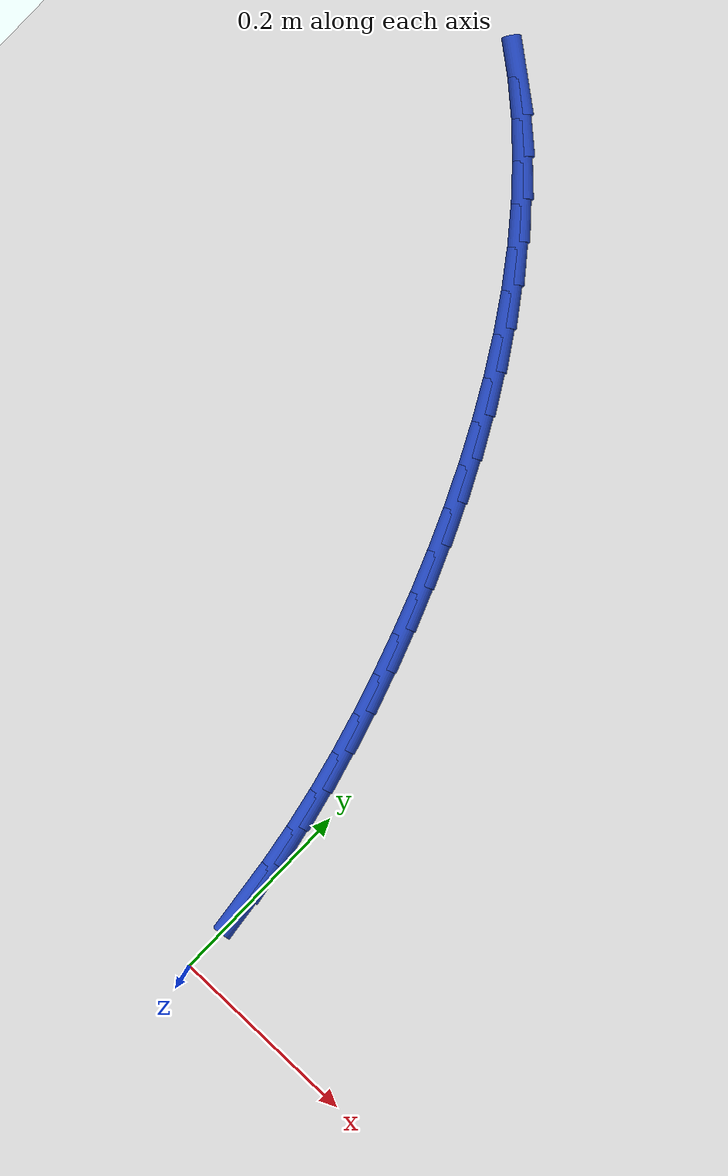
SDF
<sdf version="1.6">
 <world name="default">
  <model name="ground_plane">
   <static>1</static>
   <link name="link">
    <collision name="collision">
     <geometry><plane><normal>0 0 1</normal><size>100 100</size></plane></geometry>
     <surface><friction><ode><mu>100</mu><mu2>50</mu2></ode></friction></surface>
    </collision>
    <visual name="visual">
     <cast_shadows>0</cast_shadows>
     <geometry><plane><normal>0 0 1</normal><size>100 100</size></plane></geometry>
     <material>
      <script><uri>file://media/materials/scripts/gazebo.material</uri><name>Gazebo/WhiteGlow</name></script>
     </material>
    </visual>
   </link>
  </model>
  <model name="line">
   <link name="link_2">
    <pose>-0.004964846643546085 0.08577487860705432 0.01 0 1.57 -1.4473894395793307</pose>
    <collision name="collision">
     <geometry><cylinder><radius>0.01</radius><length>0.08</length></cylinder></geometry>
    </collision>
    <visual name="visual">
     <material>
      <script><name>Gazebo/Blue</name><uri>file://media/materials/scripts/gazebo.material</uri></script>
     </material>
     <geometry><cylinder><radius>0.01</radius><length>0.08</length></cylinder></geometry>
    </visual>
   </link>
   <link name="link_3">
    <pose>-0.0102526416312219 0.12840559999993736 0.01 0 1.57 -1.4070946029793014</pose>
    <collision name="collision">
     <geometry><cylinder><radius>0.01</radius><length>0.08</length></cylinder></geometry>
    </collision>
    <visual name="visual">
     <material>
      <script><name>Gazebo/Blue</name><uri>file://media/materials/scripts/gazebo.material</uri></script>
     </material>
     <geometry><cylinder><radius>0.01</radius><length>0.08</length></cylinder></geometry>
    </visual>
   </link>
   <link name="link_4">
    <pose>-0.017271860546497257 0.17089999474470668 0.01 0 1.57 -1.3695541495761743</pose>
    <collision name="collision">
     <geometry><cylinder><radius>0.01</radius><length>0.08</length></cylinder></geometry>
    </collision>
    <visual name="visual">
     <material>
      <script><name>Gazebo/Blue</name><uri>file://media/materials/scripts/gazebo.material</uri></script>
     </material>
     <geometry><cylinder><radius>0.01</radius><length>0.08</length></cylinder></geometry>
    </visual>
   </link>
   <link name="link_5">
    <pose>-0.025918385502120462 0.21328417681059914 0.01 0 1.57 -1.3348558883137478</pose>
    <collision name="collision">
     <geometry><cylinder><radius>0.01</radius><length>0.08</length></cylinder></geometry>
    </collision>
    <visual name="visual">
     <material>
      <script><name>Gazebo/Blue</name><uri>file://media/materials/scripts/gazebo.material</uri></script>
     </material>
     <geometry><cylinder><radius>0.01</radius><length>0.08</length></cylinder></geometry>
    </visual>
   </link>
   <link name="link_6">
    <pose>-0.03608809861083975 0.2555842601668513 0.01 0 1.57 -1.3030419218441027</pose>
    <collision name="collision">
     <geometry><cylinder><radius>0.01</radius><length>0.08</length></cylinder></geometry>
    </collision>
    <visual name="visual">
     <material>
      <script><name>Gazebo/Blue</name><uri>file://media/materials/scripts/gazebo.material</uri></script>
     </material>
     <geometry><cylinder><radius>0.01</radius><length>0.08</length></cylinder></geometry>
    </visual>
   </link>
   <link name="link_7">
    <pose>-0.04767688198540343 0.2978263587827001 0.01 0 1.57 -1.2741169158119359</pose>
    <collision name="collision">
     <geometry><cylinder><radius>0.01</radius><length>0.08</length></cylinder></geometry>
    </collision>
    <visual name="visual">
     <material>
      <script><name>Gazebo/Blue</name><uri>file://media/materials/scripts/gazebo.material</uri></script>
     </material>
     <geometry><cylinder><radius>0.01</radius><length>0.08</length></cylinder></geometry>
    </visual>
   </link>
   <link name="link_8">
    <pose>-0.060580617738559744 0.3400365866273821 0.01 0 1.57 -1.247971181726745</pose>
    <collision name="collision">
     <geometry><cylinder><radius>0.01</radius><length>0.08</length></cylinder></geometry>
    </collision>
    <visual name="visual">
     <material>
      <script><name>Gazebo/Blue</name><uri>file://media/materials/scripts/gazebo.material</uri></script>
     </material>
     <geometry><cylinder><radius>0.01</radius><length>0.08</length></cylinder></geometry>
    </visual>
   </link>
   <link name="link_9">
    <pose>-0.07469778131437152 0.382236863054176 0.01 0 1.57 -1.2225498965671509</pose>
    <collision name="collision">
     <geometry><cylinder><radius>0.01</radius><length>0.08</length></cylinder></geometry>
    </collision>
    <visual name="visual">
     <material>
      <script><name>Gazebo/Blue</name><uri>file://media/materials/scripts/gazebo.material</uri></script>
     </material>
     <geometry><cylinder><radius>0.01</radius><length>0.08</length></cylinder></geometry>
    </visual>
   </link>
   <link name="link_10">
    <pose>-0.0899871890345314 0.42435150831406615 0.01 0 1.57 -1.1956739762482826</pose>
    <collision name="collision">
     <geometry><cylinder><radius>0.01</radius><length>0.08</length></cylinder></geometry>
    </collision>
    <visual name="visual">
     <material>
      <script><name>Gazebo/Blue</name><uri>file://media/materials/scripts/gazebo.material</uri></script>
     </material>
     <geometry><cylinder><radius>0.01</radius><length>0.08</length></cylinder></geometry>
    </visual>
   </link>
   <link name="link_11">
    <pose>-0.10646838633580383 0.4662066155962686 0.01 0 1.57 -1.1670287262874839</pose>
    <collision name="collision">
     <geometry><cylinder><radius>0.01</radius><length>0.08</length></cylinder></geometry>
    </collision>
    <visual name="visual">
     <material>
      <script><name>Gazebo/Blue</name><uri>file://media/materials/scripts/gazebo.material</uri></script>
     </material>
     <geometry><cylinder><radius>0.01</radius><length>0.08</length></cylinder></geometry>
    </visual>
   </link>
   <link name="link_12">
    <pose>-0.1241635896347574 0.507623957880527 0.01 0 1.57 -1.1363692677235309</pose>
    <collision name="collision">
     <geometry><cylinder><radius>0.01</radius><length>0.08</length></cylinder></geometry>
    </collision>
    <visual name="visual">
     <material>
      <script><name>Gazebo/Blue</name><uri>file://media/materials/scripts/gazebo.material</uri></script>
     </material>
     <geometry><cylinder><radius>0.01</radius><length>0.08</length></cylinder></geometry>
    </visual>
   </link>
   <link name="link_13">
    <pose>-0.14309501534796065 0.5484253081465849 0.01 0 1.57 -1.1034303465614486</pose>
    <collision name="collision">
     <geometry><cylinder><radius>0.01</radius><length>0.08</length></cylinder></geometry>
    </collision>
    <visual name="visual">
     <material>
      <script><name>Gazebo/Blue</name><uri>file://media/materials/scripts/gazebo.material</uri></script>
     </material>
     <geometry><cylinder><radius>0.01</radius><length>0.08</length></cylinder></geometry>
    </visual>
   </link>
   <link name="link_14">
    <pose>-0.16328487989198204 0.5884324393741854 0.01 0 1.57 -1.0679247356543935</pose>
    <collision name="collision">
     <geometry><cylinder><radius>0.01</radius><length>0.08</length></cylinder></geometry>
    </collision>
    <visual name="visual">
     <material>
      <script><name>Gazebo/Blue</name><uri>file://media/materials/scripts/gazebo.material</uri></script>
     </material>
     <geometry><cylinder><radius>0.01</radius><length>0.08</length></cylinder></geometry>
    </visual>
   </link>
   <link name="link_15">
    <pose>-0.18475539968339025 0.6274671245430724 0.01 0 1.57 -1.0295429599865278</pose>
    <collision name="collision">
     <geometry><cylinder><radius>0.01</radius><length>0.08</length></cylinder></geometry>
    </collision>
    <visual name="visual">
     <material>
      <script><name>Gazebo/Blue</name><uri>file://media/materials/scripts/gazebo.material</uri></script>
     </material>
     <geometry><cylinder><radius>0.01</radius><length>0.08</length></cylinder></geometry>
    </visual>
   </link>
   <link name="link_16">
    <pose>-0.2075287911387538 0.6653511366329892 0.01 0 1.57 -0.9879550452614867</pose>
    <collision name="collision">
     <geometry><cylinder><radius>0.01</radius><length>0.08</length></cylinder></geometry>
    </collision>
    <visual name="visual">
     <material>
      <script><name>Gazebo/Blue</name><uri>file://media/materials/scripts/gazebo.material</uri></script>
     </material>
     <geometry><cylinder><radius>0.01</radius><length>0.08</length></cylinder></geometry>
    </visual>
   </link>
   <link name="link_17">
    <pose>-0.23162727067464117 0.7019062486236788 0.01 0 1.57 -0.9428152827927078</pose>
    <collision name="collision">
     <geometry><cylinder><radius>0.01</radius><length>0.08</length></cylinder></geometry>
    </collision>
    <visual name="visual">
     <material>
      <script><name>Gazebo/Blue</name><uri>file://media/materials/scripts/gazebo.material</uri></script>
     </material>
     <geometry><cylinder><radius>0.01</radius><length>0.08</length></cylinder></geometry>
    </visual>
   </link>
   <link name="link_18">
    <pose>-0.257073054707621 0.7369542334948853 0.01 0 1.57 -0.8937713303897217</pose>
    <collision name="collision">
     <geometry><cylinder><radius>0.01</radius><length>0.08</length></cylinder></geometry>
    </collision>
    <visual name="visual">
     <material>
      <script><name>Gazebo/Blue</name><uri>file://media/materials/scripts/gazebo.material</uri></script>
     </material>
     <geometry><cylinder><radius>0.01</radius><length>0.08</length></cylinder></geometry>
    </visual>
   </link>
   <link name="link_19">
    <pose>-0.28388835965426185 0.770316864226352 0.01 0 1.57 -0.8404792662069093</pose>
    <collision name="collision">
     <geometry><cylinder><radius>0.01</radius><length>0.08</length></cylinder></geometry>
    </collision>
    <visual name="visual">
     <material>
      <script><name>Gazebo/Blue</name><uri>file://media/materials/scripts/gazebo.material</uri></script>
     </material>
     <geometry><cylinder><radius>0.01</radius><length>0.08</length></cylinder></geometry>
    </visual>
   </link>
   <link name="link_20">
    <pose>-0.3120954019311323 0.8018159137978226 0.01 0 1.57 -0.7826263438537103</pose>
    <collision name="collision">
     <geometry><cylinder><radius>0.01</radius><length>0.08</length></cylinder></geometry>
    </collision>
    <visual name="visual">
     <material>
      <script><name>Gazebo/Blue</name><uri>file://media/materials/scripts/gazebo.material</uri></script>
     </material>
     <geometry><cylinder><radius>0.01</radius><length>0.08</length></cylinder></geometry>
    </visual>
   </link>
   <link name="link_21">
    <pose>-0.3417163979548008 0.83127315518904 0.01 0 1.57 -0.719962921207484</pose>
    <collision name="collision">
     <geometry><cylinder><radius>0.01</radius><length>0.08</length></cylinder></geometry>
    </collision>
    <visual name="visual">
     <material>
      <script><name>Gazebo/Blue</name><uri>file://media/materials/scripts/gazebo.material</uri></script>
     </material>
     <geometry><cylinder><radius>0.01</radius><length>0.08</length></cylinder></geometry>
    </visual>
   </link>
   <link name="link_22">
    <pose>-0.3727735641418358 0.8585103613797479 0.01 0 1.57 -0.6558438962309355</pose>
    <collision name="collision">
     <geometry><cylinder><radius>0.01</radius><length>0.08</length></cylinder></geometry>
    </collision>
    <visual name="visual">
     <material>
      <script><name>Gazebo/Blue</name><uri>file://media/materials/scripts/gazebo.material</uri></script>
     </material>
     <geometry><cylinder><radius>0.01</radius><length>0.08</length></cylinder></geometry>
    </visual>
   </link>
  </model>
 </world>
</sdf>
